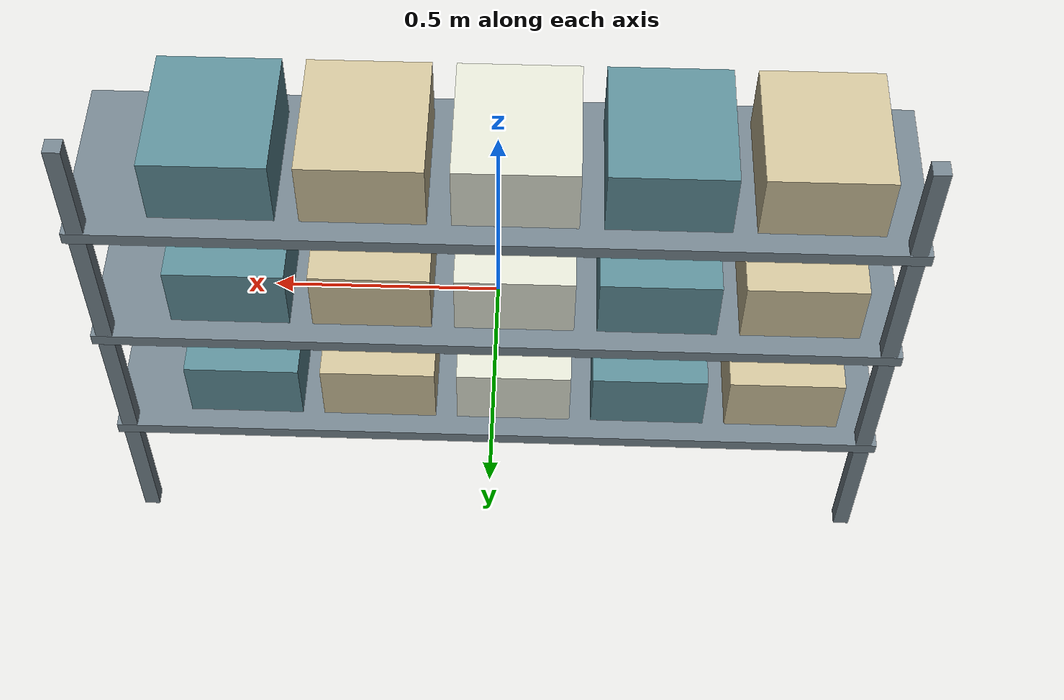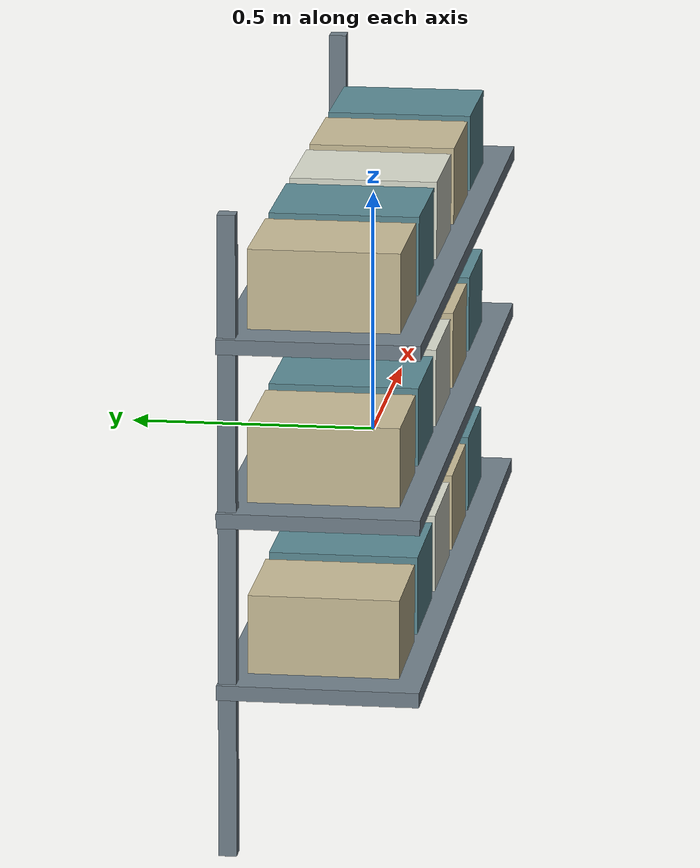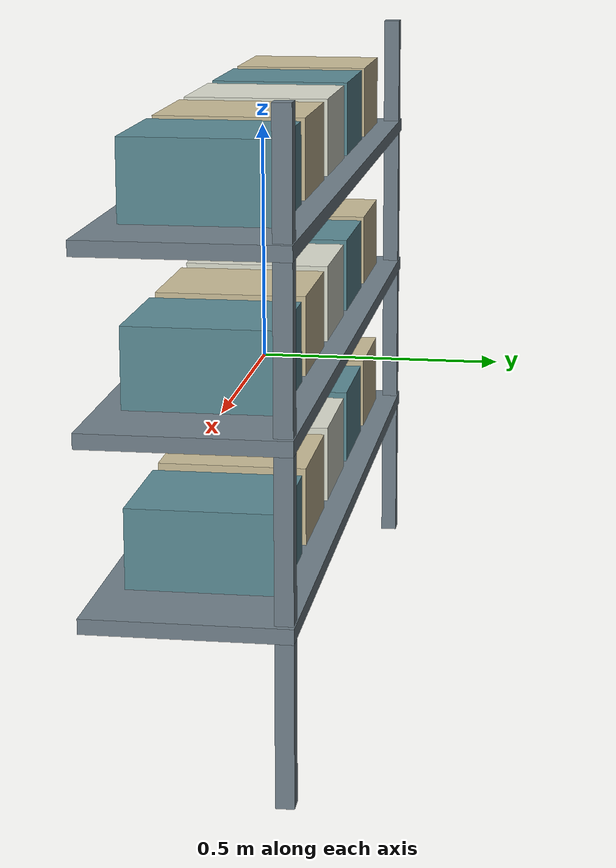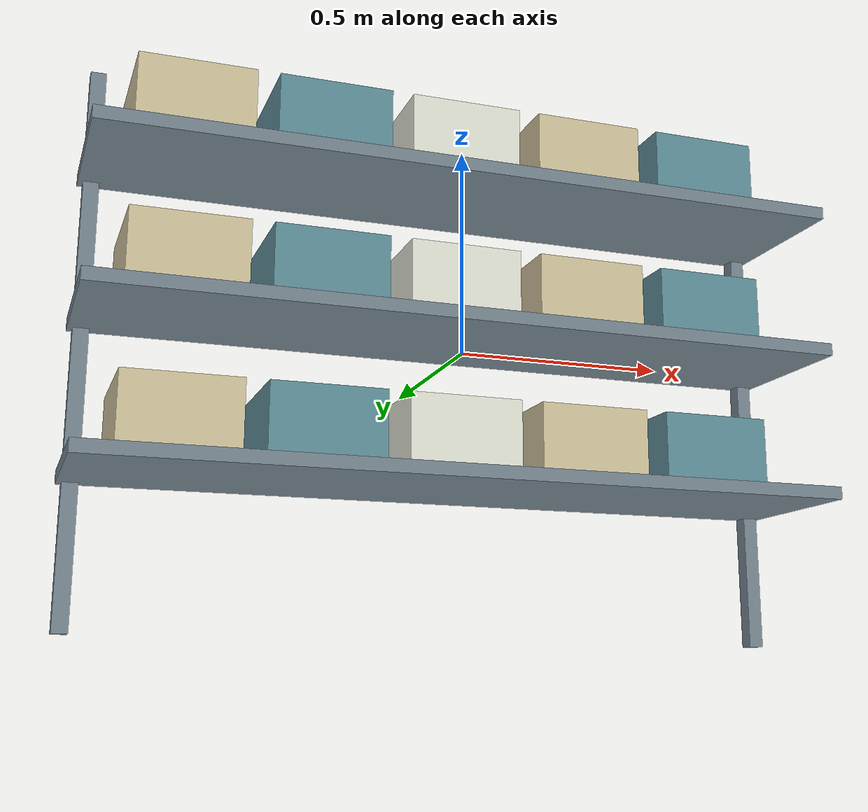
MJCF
<?xml version='1.0' encoding='utf-8'?>
<mujoco model="Shelf bay and boxes | static procedural reference">
  <visual>
    <global offwidth="1000" offheight="600" />
  </visual>
  <asset>
    <texture type="skybox" builtin="gradient" rgb1=".92 .95 .97" rgb2=".70 .78 .84" width="512" height="3072" />
  </asset>
  <worldbody>
    <geom type="box" size="0.018 0.018 0.65" pos="-0.85 0.18 0" quat="1 0 0 0" rgba="0.449999988 0.50999999 0.550000012 1" contype="0" conaffinity="0" />
    <geom type="box" size="0.018 0.018 0.65" pos="0.85 0.18 0" quat="1 0 0 0" rgba="0.449999988 0.50999999 0.550000012 1" contype="0" conaffinity="0" />
    <geom type="box" size="0.88 0.2 0.015" pos="0 0 -0.31" quat="1 0 0 0" rgba="0.449999988 0.50999999 0.550000012 1" contype="0" conaffinity="0" />
    <geom type="box" size="0.13 0.15 0.08" pos="-0.66 0 -0.215" quat="1 0 0 0" rgba="0.800000012 0.75 0.600000024 1" contype="0" conaffinity="0" />
    <geom type="box" size="0.13 0.15 0.08" pos="-0.35 0 -0.215" quat="1 0 0 0" rgba="0.360000014 0.550000012 0.589999974 1" contype="0" conaffinity="0" />
    <geom type="box" size="0.13 0.15 0.08" pos="-0.04 0 -0.215" quat="1 0 0 0" rgba="0.870000005 0.879999995 0.819999993 1" contype="0" conaffinity="0" />
    <geom type="box" size="0.13 0.15 0.08" pos="0.27 0 -0.215" quat="1 0 0 0" rgba="0.800000012 0.75 0.600000024 1" contype="0" conaffinity="0" />
    <geom type="box" size="0.13 0.15 0.08" pos="0.58 0 -0.215" quat="1 0 0 0" rgba="0.360000014 0.550000012 0.589999974 1" contype="0" conaffinity="0" />
    <geom type="box" size="0.88 0.2 0.015" pos="0 0 0.04" quat="1 0 0 0" rgba="0.449999988 0.50999999 0.550000012 1" contype="0" conaffinity="0" />
    <geom type="box" size="0.13 0.15 0.08" pos="-0.66 0 0.135" quat="1 0 0 0" rgba="0.800000012 0.75 0.600000024 1" contype="0" conaffinity="0" />
    <geom type="box" size="0.13 0.15 0.08" pos="-0.35 0 0.135" quat="1 0 0 0" rgba="0.360000014 0.550000012 0.589999974 1" contype="0" conaffinity="0" />
    <geom type="box" size="0.13 0.15 0.08" pos="-0.04 0 0.135" quat="1 0 0 0" rgba="0.870000005 0.879999995 0.819999993 1" contype="0" conaffinity="0" />
    <geom type="box" size="0.13 0.15 0.08" pos="0.27 0 0.135" quat="1 0 0 0" rgba="0.800000012 0.75 0.600000024 1" contype="0" conaffinity="0" />
    <geom type="box" size="0.13 0.15 0.08" pos="0.58 0 0.135" quat="1 0 0 0" rgba="0.360000014 0.550000012 0.589999974 1" contype="0" conaffinity="0" />
    <geom type="box" size="0.88 0.2 0.015" pos="0 0 0.39" quat="1 0 0 0" rgba="0.449999988 0.50999999 0.550000012 1" contype="0" conaffinity="0" />
    <geom type="box" size="0.13 0.15 0.08" pos="-0.66 0 0.485" quat="1 0 0 0" rgba="0.800000012 0.75 0.600000024 1" contype="0" conaffinity="0" />
    <geom type="box" size="0.13 0.15 0.08" pos="-0.35 0 0.485" quat="1 0 0 0" rgba="0.360000014 0.550000012 0.589999974 1" contype="0" conaffinity="0" />
    <geom type="box" size="0.13 0.15 0.08" pos="-0.04 0 0.485" quat="1 0 0 0" rgba="0.870000005 0.879999995 0.819999993 1" contype="0" conaffinity="0" />
    <geom type="box" size="0.13 0.15 0.08" pos="0.27 0 0.485" quat="1 0 0 0" rgba="0.800000012 0.75 0.600000024 1" contype="0" conaffinity="0" />
    <geom type="box" size="0.13 0.15 0.08" pos="0.58 0 0.485" quat="1 0 0 0" rgba="0.360000014 0.550000012 0.589999974 1" contype="0" conaffinity="0" />
  </worldbody>
</mujoco>
